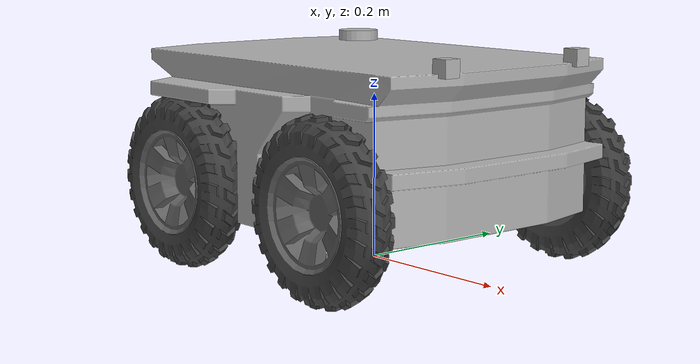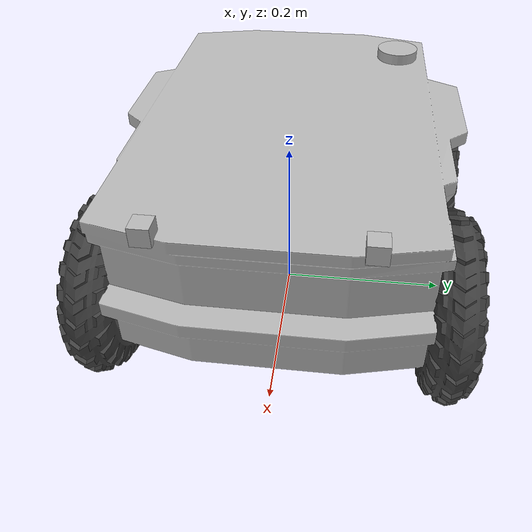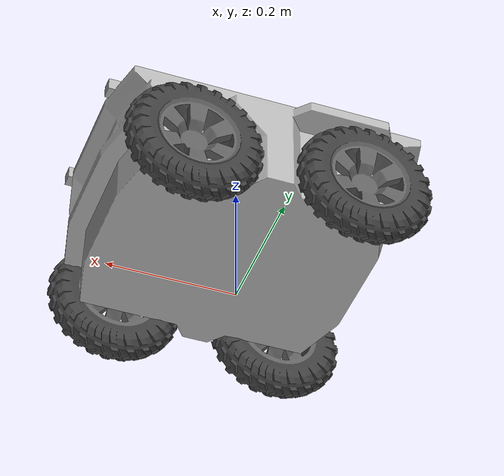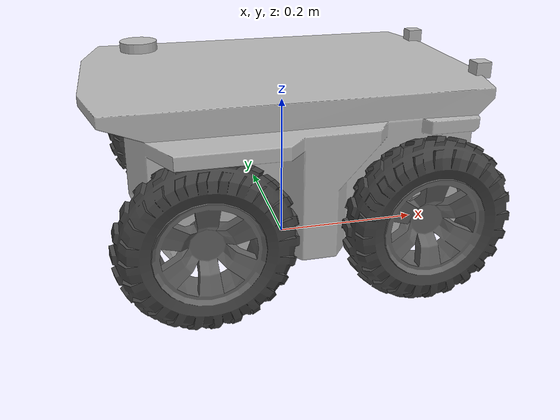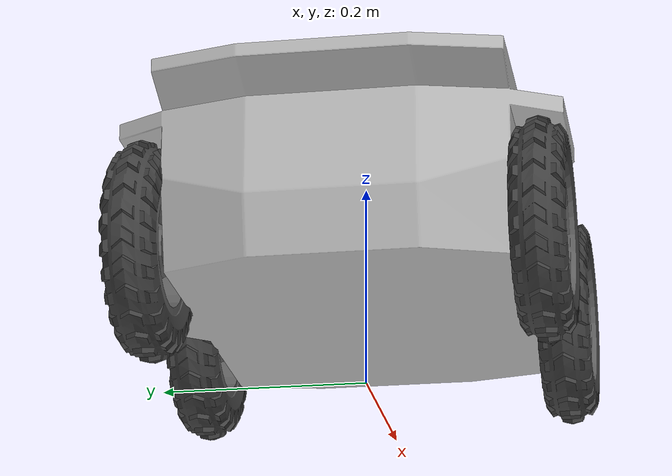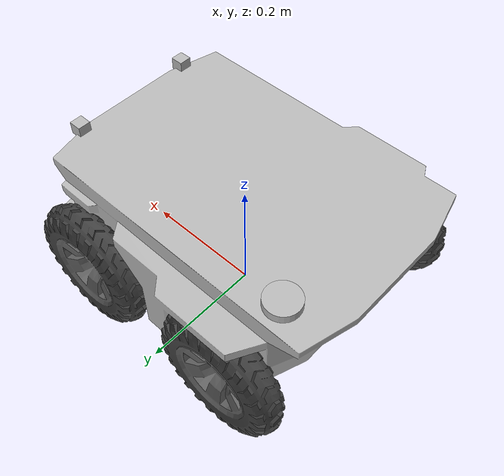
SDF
<?xml version="1.0"?>
<sdf version="1.6">
    <model name="CafeRobot">
        <plugin name="slotcar" filename="libslotcar.so">

            <nominal_drive_speed>0.5</nominal_drive_speed>
            <nominal_drive_acceleration>0.25</nominal_drive_acceleration>
            <max_drive_acceleration>0.75</max_drive_acceleration>

            <nominal_turn_speed>0.6</nominal_turn_speed>
            <nominal_turn_acceleration>1.5</nominal_turn_acceleration>
            <max_turn_acceleration>2.0</max_turn_acceleration>

            <tire_radius>0.1</tire_radius>
            <base_width>0.3206</base_width>

            <stop_distance>0.35</stop_distance>
            <stop_radius>0.35</stop_radius>

        </plugin>

        <pose>0 0 0.063494 0 0 0</pose>
        <enable_wind>1</enable_wind>
        <link name="base_link">
            <inertial>
                <pose>0.011999 0.002 0.066996 0 -0 0</pose>
                <mass>16.524</mass>
                <inertia>
                    <ixx>0.320605</ixx>
                    <ixy>-0.000800023</ixy>
                    <ixz>0.0163992</ixz>
                    <iyy>0.399205</iyy>
                    <iyz>-0.000900133</iyz>
                    <izz>0.455501</izz>
                </inertia>
            </inertial>
            <collision name="chassis_collision">
                <pose>0 0 0.092 0 -0 0</pose>
                <geometry>
                    <box>
                        <size>0.42 0.31 0.184</size>
                    </box>
                </geometry>
            </collision>
            <visual name="chassis_visual">
                <pose>0 0 -0.0655 1.5708 0 -1.5708</pose>
                <geometry>
                    <mesh>
                        <uri>model://CafeRobot/meshes/CafeRobot_chassis.dae</uri>
                    </mesh>
                </geometry>
            </visual>
            <visual name="navsat_visual_1">
                <pose>-0.18 0.126 0.1895 0 -0 0</pose>
                <geometry>
                    <cylinder>
                        <length>0.016</length>
                        <radius>0.026</radius>
                    </cylinder>
                </geometry>
            </visual>

            <visual name="camera_left_visual">
                <pose>0.23 0.1 0.19 0 0 0</pose>
                <geometry>
                    <box>
                        <size>0.02 0.02 0.02</size>
                    </box>
                </geometry>
            </visual>

            <visual name="camera_right_visual">
                <pose>0.23 -0.1 0.19 0 0 0</pose>
                <geometry>
                    <box>
                        <size>0.02 0.02 0.02</size>
                    </box>
                </geometry>
            </visual>

        </link>

        <link name="front_left_wheel">
            <pose>0.131 0.187795 0.0345 0 -0 0</pose>
            <inertial>
                <mass>0.477</mass>
                <inertia>
                    <ixx>0.0013</ixx>
                    <ixy>0</ixy>
                    <ixz>0</ixz>
                    <iyy>0.0024</iyy>
                    <iyz>0</iyz>
                    <izz>0.0013</izz>
                </inertia>
            </inertial>
            <collision name="collision">
                <pose>0 0 0 1.5707963267948966 -0 0</pose>
                <geometry>
                    <cylinder>
                        <length>0.04</length>
                        <radius>0.098</radius>
                    </cylinder>
                </geometry>
                <surface>
                  <friction>
                    <ode>
                      <mu>1</mu>
                      <mu2>1</mu2>
                      <slip1>0.0475</slip1>
                      <slip2>0</slip2>
                      <fdir1>0 0 1</fdir1>
                    </ode>
                  </friction>
                </surface>
            </collision>
            <visual name="visual">
                <pose>0 0 0 1.5708 -0 0</pose>
                <geometry>
                    <mesh>
                        <uri>model://CafeRobot/meshes/CafeRobot_wheel_left.dae</uri>
                    </mesh>
                </geometry>
            </visual>
        </link>

        <link name="front_right_wheel">
            <pose>0.131 -0.187795 0.0345 0 -0 0</pose>
            <inertial>
                <mass>0.477</mass>
                <inertia>
                    <ixx>0.0013</ixx>
                    <ixy>0</ixy>
                    <ixz>0</ixz>
                    <iyy>0.0024</iyy>
                    <iyz>0</iyz>
                    <izz>0.0013</izz>
                </inertia>
            </inertial>
            <collision name="collision">
                <pose>0 0 0 1.5707963267948966 -0 0</pose>
                <geometry>
                    <cylinder>
                        <length>0.04</length>
                        <radius>0.098</radius>
                    </cylinder>
                </geometry>
                <surface>
                  <friction>
                    <ode>
                      <mu>1</mu>
                      <mu2>1</mu2>
                      <slip1>0.0475</slip1>
                      <slip2>0</slip2>
                      <fdir1>0 0 1</fdir1>
                    </ode>
                  </friction>
                </surface>
            </collision>
            <visual name="visual">
                <pose>0 0 0 1.5708 -0 0</pose>
                <geometry>
                    <mesh>
                        <uri>model://CafeRobot/meshes/CafeRobot_wheel_right.dae</uri>
                    </mesh>
                </geometry>
            </visual>
        </link>

        <link name="rear_left_wheel">
            <pose>-0.131 0.187795 0.0345 0 -0 0</pose>
            <inertial>
                <mass>0.477</mass>
                <inertia>
                    <ixx>0.0013</ixx>
                    <ixy>0</ixy>
                    <ixz>0</ixz>
                    <iyy>0.0024</iyy>
                    <iyz>0</iyz>
                    <izz>0.0013</izz>
                </inertia>
            </inertial>
            <collision name="collision">
                <pose>0 0 0 1.5707963267948966 -0 0</pose>
                <geometry>
                    <cylinder>
                        <length>0.04</length>
                        <radius>0.098</radius>
                    </cylinder>
                </geometry>
                <surface>
                  <friction>
                    <ode>
                      <mu>1</mu>
                      <mu2>1</mu2>
                      <slip1>0.0475</slip1>
                      <slip2>0</slip2>
                      <fdir1>0 0 1</fdir1>
                    </ode>
                  </friction>
                </surface>
            </collision>
            <visual name="visual">
                <pose>0 0 0 1.5708 -0 0</pose>
                <geometry>
                    <mesh>
                        <uri>model://CafeRobot/meshes/CafeRobot_wheel_left.dae</uri>
                    </mesh>
                </geometry>
            </visual>
        </link>

        <link name="rear_right_wheel">
            <pose>-0.131 -0.187795 0.0345 0 -0 0</pose>
            <inertial>
                <mass>0.477</mass>
                <inertia>
                    <ixx>0.0013</ixx>
                    <ixy>0</ixy>
                    <ixz>0</ixz>
                    <iyy>0.0024</iyy>
                    <iyz>0</iyz>
                    <izz>0.0013</izz>
                </inertia>
            </inertial>
            <collision name="collision">
                <pose>0 0 0 1.5707963267948966 -0 0</pose>
                <geometry>
                    <cylinder>
                        <length>0.04</length>
                        <radius>0.098</radius>
                    </cylinder>
                </geometry>
                <surface>
                  <friction>
                    <ode>
                      <mu>1</mu>
                      <mu2>1</mu2>
                      <slip1>0.0475</slip1>
                      <slip2>0</slip2>
                      <fdir1>0 0 1</fdir1>
                    </ode>
                  </friction>
                </surface>
            </collision>
            <visual name="visual">
                <pose>0 0 0 1.5708 -0 0</pose>
                <geometry>
                    <mesh>
                        <uri>model://CafeRobot/meshes/CafeRobot_wheel_right.dae</uri>
                    </mesh>
                </geometry>
            </visual>
        </link>

        <joint name="front_left_wheel_joint" type="revolute">
            <child>front_left_wheel</child>
            <parent>base_link</parent>
            <axis>
                <xyz>0 1 0</xyz>
                <limit>
                    <lower>-1e+16</lower>
                    <upper>1e+16</upper>
                </limit>
                <use_parent_model_frame>1</use_parent_model_frame>
            </axis>
        </joint>

        <joint name="joint_tire_left" type="revolute">
            <parent>base_link</parent>
            <child>rear_left_wheel</child>
            <axis>
                <xyz>0 1 0</xyz>
                <limit>
                    <lower>-1.79769e+308</lower>
                    <upper>+1.79769e+308</upper>
                </limit>
            </axis>
        </joint>

        <joint name="joint_tire_right" type="revolute">
            <parent>base_link</parent>
            <child>rear_right_wheel</child>
            <axis>
                <xyz>0 1 0</xyz>
                <limit>
                    <lower>-1.79769e+308</lower>
                    <upper>+1.79769e+308</upper>
                </limit>
            </axis>
        </joint>

        <joint name="front_right_wheel_joint" type="revolute">
            <parent>base_link</parent>
            <child>front_right_wheel</child>
            <axis>
                <xyz>0 1 0</xyz>
                <limit>
                    <lower>-1.79769e+308</lower>
                    <upper>+1.79769e+308</upper>
                </limit>
            </axis>
        </joint>
    </model>
</sdf>
